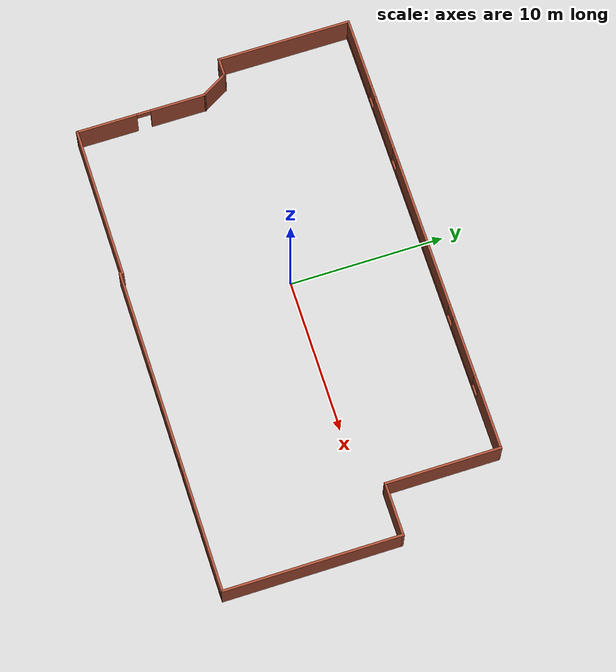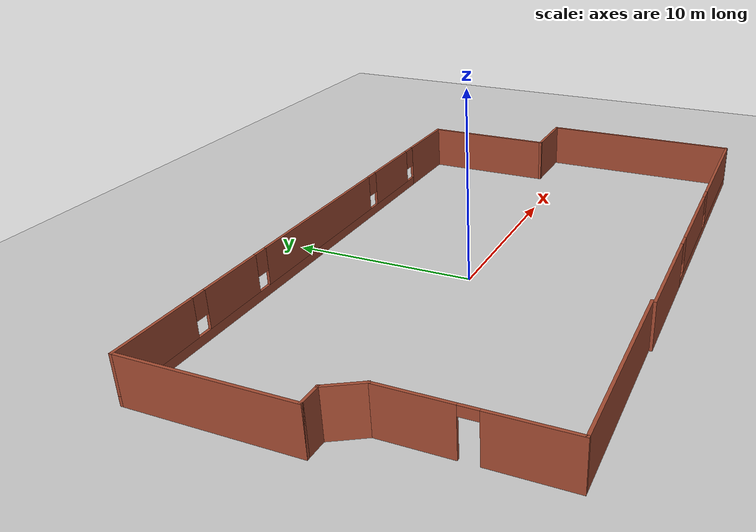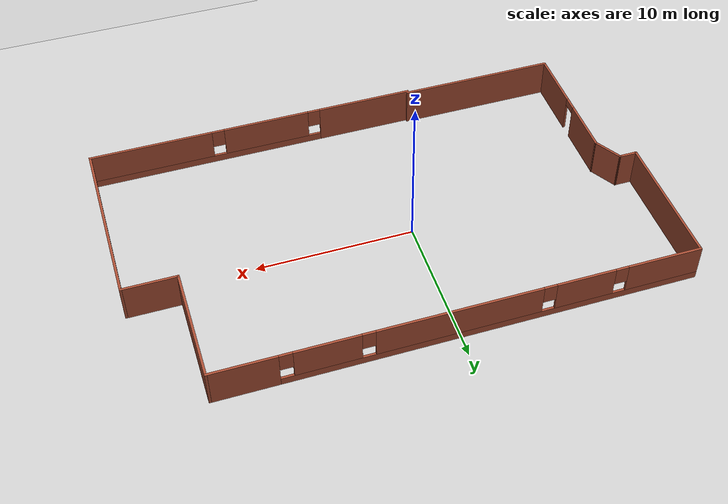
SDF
<sdf version="1.6">
 <world name="default">
  <plugin name="disable_physics" filename="libgazebo_no_physics_plugin.so"/>
  <plugin name="occupancy_grid" filename="libgazebo_occupancy_grid_plugin.so"/>
  <model name="ground_plane">
   <static>1</static>
   <link name="link">
    <collision name="collision">
     <geometry><plane><normal>0 0 1</normal><size>100 100</size></plane></geometry>
     <surface><friction><ode><mu>100</mu><mu2>50</mu2></ode></friction></surface>
    </collision>
    <visual name="visual">
     <cast_shadows>0</cast_shadows>
     <geometry><plane><normal>0 0 1</normal><size>100 100</size></plane></geometry>
     <material>
      <script><uri>file://media/materials/scripts/gazebo.material</uri><name>Gazebo/Grey</name></script>
     </material>
    </visual>
   </link>
  </model>
  <light name="sun" type="directional">
   <cast_shadows>0</cast_shadows>
   <pose>0 0 10 0 -0 0</pose>
   <diffuse>0.95 0.95 0.95 1</diffuse>
   <specular>0.1 0.1 0.1 1</specular>
   <attenuation>
    <range>1000</range>
    <constant>0.9</constant>
    <linear>0.01</linear>
    <quadratic>0.001</quadratic>
   </attenuation>
   <direction>-0.5 0.5 -1</direction>
  </light>
  <gravity>0 0 -9.8</gravity>
  <magnetic_field>6e-06 2.3e-05 -4.2e-05</magnetic_field>
  <atmosphere type="adiabatic"/>
  <physics name="default_physics" default="1" type="ode">
   <max_step_size>0.02</max_step_size>
   <real_time_factor>1</real_time_factor>
   <real_time_update_rate>50</real_time_update_rate>
  </physics>
  <scene><ambient>0.4 0.4 0.4 1</ambient><background>0.7 0.7 0.7 1</background><shadows>1</shadows></scene>
  <spherical_coordinates>
   <surface_model>EARTH_WGS84</surface_model>
   <latitude_deg>0</latitude_deg>
   <longitude_deg>0</longitude_deg>
   <elevation>0</elevation>
   <heading_deg>0</heading_deg>
  </spherical_coordinates>
  <model name="walls">
   <link name="Wall_10">
    <pose>-14.9125 -0.051073 0 0 0 -1.0472</pose>
    <visual name="Wall_10_Visual">
     <pose>0 0 1.25 0 -0 0</pose>
     <geometry><box><size>2 0.15 2.5</size></box></geometry>
     <material>
      <script><uri>file://media/materials/scripts/gazebo.material</uri><name>Gazebo/Bricks</name></script>
      <ambient>1 1 1 1</ambient>
      <diffuse>1 1 1 1</diffuse>
      <specular>0.2 0.2 0.2 1</specular>
      <emissive>0 0 0 1</emissive>
     </material>
    </visual>
    <collision name="Wall_10_Collision">
     <pose>0 0 1.25 0 -0 0</pose>
     <geometry><box><size>2 0.15 2.5</size></box></geometry>
     <surface>
      <friction>
       <ode><mu>1</mu><mu2>1</mu2><fdir1>0 0 0</fdir1><slip1>0</slip1><slip2>0</slip2></ode>
       <torsional>
        <coefficient>1</coefficient>
        <patch_radius>0</patch_radius>
        <surface_radius>0</surface_radius>
        <use_patch_radius>1</use_patch_radius>
        <ode><slip>0</slip></ode>
       </torsional>
      </friction>
      <bounce><restitution_coefficient>0</restitution_coefficient><threshold>1e+06</threshold></bounce>
      <contact>
       <collide_without_contact>0</collide_without_contact>
       <collide_without_contact_bitmask>1</collide_without_contact_bitmask>
       <collide_bitmask>1</collide_bitmask>
       <ode>
        <soft_cfm>0</soft_cfm>
        <soft_erp>0.2</soft_erp>
        <kp>1e+13</kp>
        <kd>1</kd>
        <max_vel>0.01</max_vel>
        <min_depth>0</min_depth>
       </ode>
       <bullet>
        <split_impulse>1</split_impulse>
        <split_impulse_penetration_threshold>-0.01</split_impulse_penetration_threshold>
        <soft_cfm>0</soft_cfm>
        <soft_erp>0.2</soft_erp>
        <kp>1e+13</kp>
        <kd>1</kd>
       </bullet>
      </contact>
     </surface>
    </collision>
   </link>
   <link name="Wall_11">
    <pose>-14.45 -5.02715 0 0 0 -1.5708</pose>
    <visual name="Wall_11_Visual_1">
     <pose>2.26538 0 1.25 0 -0 0</pose>
     <geometry><box><size>3.96925 0.15 2.5</size></box></geometry>
     <material>
      <script><uri>file://media/materials/scripts/gazebo.material</uri><name>Gazebo/Bricks</name></script>
      <ambient>1 1 1 1</ambient>
      <diffuse>1 1 1 1</diffuse>
      <specular>0.2 0.2 0.2 1</specular>
      <emissive>0 0 0 1</emissive>
     </material>
    </visual>
    <visual name="Wall_11_Visual_0">
     <pose>-2.43462 0 1.25 0 -0 0</pose>
     <geometry><box><size>3.63075 0.15 2.5</size></box></geometry>
     <material>
      <script><uri>file://media/materials/scripts/gazebo.material</uri><name>Gazebo/Bricks</name></script>
      <ambient>1 1 1 1</ambient>
      <diffuse>1 1 1 1</diffuse>
      <specular>0.2 0.2 0.2 1</specular>
      <emissive>0 0 0 1</emissive>
     </material>
    </visual>
    <visual name="Wall_11_Visual_2">
     <pose>-0.169246 0 2.25 0 -0 0</pose>
     <geometry><box><size>0.9 0.15 0.5</size></box></geometry>
     <material>
      <script><uri>file://media/materials/scripts/gazebo.material</uri><name>Gazebo/Bricks</name></script>
      <ambient>1 1 1 1</ambient>
      <diffuse>1 1 1 1</diffuse>
      <specular>0.2 0.2 0.2 1</specular>
      <emissive>0 0 0 1</emissive>
     </material>
    </visual>
    <collision name="Wall_11_Collision_0">
     <pose>-2.43462 0 1.25 0 -0 0</pose>
     <geometry><box><size>3.63075 0.15 2.5</size></box></geometry>
     <surface>
      <friction>
       <ode><mu>1</mu><mu2>1</mu2><fdir1>0 0 0</fdir1><slip1>0</slip1><slip2>0</slip2></ode>
       <torsional>
        <coefficient>1</coefficient>
        <patch_radius>0</patch_radius>
        <surface_radius>0</surface_radius>
        <use_patch_radius>1</use_patch_radius>
        <ode><slip>0</slip></ode>
       </torsional>
      </friction>
      <bounce><restitution_coefficient>0</restitution_coefficient><threshold>1e+06</threshold></bounce>
      <contact>
       <collide_without_contact>0</collide_without_contact>
       <collide_without_contact_bitmask>1</collide_without_contact_bitmask>
       <collide_bitmask>1</collide_bitmask>
       <ode>
        <soft_cfm>0</soft_cfm>
        <soft_erp>0.2</soft_erp>
        <kp>1e+13</kp>
        <kd>1</kd>
        <max_vel>0.01</max_vel>
        <min_depth>0</min_depth>
       </ode>
       <bullet>
        <split_impulse>1</split_impulse>
        <split_impulse_penetration_threshold>-0.01</split_impulse_penetration_threshold>
        <soft_cfm>0</soft_cfm>
        <soft_erp>0.2</soft_erp>
        <kp>1e+13</kp>
        <kd>1</kd>
       </bullet>
      </contact>
     </surface>
    </collision>
    <collision name="Wall_11_Collision_2">
     <pose>-0.169246 0 2.25 0 -0 0</pose>
     <geometry><box><size>0.9 0.15 0.5</size></box></geometry>
     <surface>
      <friction>
       <ode><mu>1</mu><mu2>1</mu2><fdir1>0 0 0</fdir1><slip1>0</slip1><slip2>0</slip2></ode>
       <torsional>
        <coefficient>1</coefficient>
        <patch_radius>0</patch_radius>
        <surface_radius>0</surface_radius>
        <use_patch_radius>1</use_patch_radius>
        <ode><slip>0</slip></ode>
       </torsional>
      </friction>
      <bounce><restitution_coefficient>0</restitution_coefficient><threshold>1e+06</threshold></bounce>
      <contact>
       <collide_without_contact>0</collide_without_contact>
       <collide_without_contact_bitmask>1</collide_without_contact_bitmask>
       <collide_bitmask>1</collide_bitmask>
       <ode>
        <soft_cfm>0</soft_cfm>
        <soft_erp>0.2</soft_erp>
        <kp>1e+13</kp>
        <kd>1</kd>
        <max_vel>0.01</max_vel>
        <min_depth>0</min_depth>
       </ode>
       <bullet>
        <split_impulse>1</split_impulse>
        <split_impulse_penetration_threshold>-0.01</split_impulse_penetration_threshold>
        <soft_cfm>0</soft_cfm>
        <soft_erp>0.2</soft_erp>
        <kp>1e+13</kp>
        <kd>1</kd>
       </bullet>
      </contact>
     </surface>
    </collision>
    <collision name="Wall_11_Collision_1">
     <pose>2.26538 0 1.25 0 -0 0</pose>
     <geometry><box><size>3.96925 0.15 2.5</size></box></geometry>
     <surface>
      <friction>
       <ode><mu>1</mu><mu2>1</mu2><fdir1>0 0 0</fdir1><slip1>0</slip1><slip2>0</slip2></ode>
       <torsional>
        <coefficient>1</coefficient>
        <patch_radius>0</patch_radius>
        <surface_radius>0</surface_radius>
        <use_patch_radius>1</use_patch_radius>
        <ode><slip>0</slip></ode>
       </torsional>
      </friction>
      <bounce><restitution_coefficient>0</restitution_coefficient><threshold>1e+06</threshold></bounce>
      <contact>
       <collide_without_contact>0</collide_without_contact>
       <collide_without_contact_bitmask>1</collide_without_contact_bitmask>
       <collide_bitmask>1</collide_bitmask>
       <ode>
        <soft_cfm>0</soft_cfm>
        <soft_erp>0.2</soft_erp>
        <kp>1e+13</kp>
        <kd>1</kd>
        <max_vel>0.01</max_vel>
        <min_depth>0</min_depth>
       </ode>
       <bullet>
        <split_impulse>1</split_impulse>
        <split_impulse_penetration_threshold>-0.01</split_impulse_penetration_threshold>
        <soft_cfm>0</soft_cfm>
        <soft_erp>0.2</soft_erp>
        <kp>1e+13</kp>
        <kd>1</kd>
       </bullet>
      </contact>
     </surface>
    </collision>
   </link>
   <link name="Wall_12">
    <pose>-9.525 -9.20215 0 0 -0 0</pose>
    <visual name="Wall_12_Visual">
     <pose>0 0 1.25 0 -0 0</pose>
     <geometry><box><size>10 0.15 2.5</size></box></geometry>
     <material>
      <script><uri>file://media/materials/scripts/gazebo.material</uri><name>Gazebo/Bricks</name></script>
      <ambient>1 1 1 1</ambient>
      <diffuse>1 1 1 1</diffuse>
      <specular>0.2 0.2 0.2 1</specular>
      <emissive>0 0 0 1</emissive>
     </material>
    </visual>
    <collision name="Wall_12_Collision">
     <pose>0 0 1.25 0 -0 0</pose>
     <geometry><box><size>10 0.15 2.5</size></box></geometry>
     <surface>
      <friction>
       <ode><mu>1</mu><mu2>1</mu2><fdir1>0 0 0</fdir1><slip1>0</slip1><slip2>0</slip2></ode>
       <torsional>
        <coefficient>1</coefficient>
        <patch_radius>0</patch_radius>
        <surface_radius>0</surface_radius>
        <use_patch_radius>1</use_patch_radius>
        <ode><slip>0</slip></ode>
       </torsional>
      </friction>
      <bounce><restitution_coefficient>0</restitution_coefficient><threshold>1e+06</threshold></bounce>
      <contact>
       <collide_without_contact>0</collide_without_contact>
       <collide_without_contact_bitmask>1</collide_without_contact_bitmask>
       <collide_bitmask>1</collide_bitmask>
       <ode>
        <soft_cfm>0</soft_cfm>
        <soft_erp>0.2</soft_erp>
        <kp>1e+13</kp>
        <kd>1</kd>
        <max_vel>0.01</max_vel>
        <min_depth>0</min_depth>
       </ode>
       <bullet>
        <split_impulse>1</split_impulse>
        <split_impulse_penetration_threshold>-0.01</split_impulse_penetration_threshold>
        <soft_cfm>0</soft_cfm>
        <soft_erp>0.2</soft_erp>
        <kp>1e+13</kp>
        <kd>1</kd>
       </bullet>
      </contact>
     </surface>
    </collision>
   </link>
   <link name="Wall_3">
    <pose>5.925 -9.35 0 0 -0 0</pose>
    <visual name="Wall_3_Visual_0">
     <pose>-7.53882 0 1.25 0 -0 0</pose>
     <geometry><box><size>6.17237 0.15 2.5</size></box></geometry>
     <material>
      <script><uri>file://media/materials/scripts/gazebo.material</uri><name>Gazebo/Bricks</name></script>
      <ambient>1 1 1 1</ambient>
      <diffuse>1 1 1 1</diffuse>
      <specular>0.2 0.2 0.2 1</specular>
      <emissive>0 0 0 1</emissive>
     </material>
    </visual>
    <visual name="Wall_3_Visual_1">
     <pose>3.08618 0 0.25 0 -0 0</pose>
     <geometry><box><size>15.0776 0.15 0.5</size></box></geometry>
     <material>
      <script><uri>file://media/materials/scripts/gazebo.material</uri><name>Gazebo/Bricks</name></script>
      <ambient>1 1 1 1</ambient>
      <diffuse>1 1 1 1</diffuse>
      <specular>0.2 0.2 0.2 1</specular>
      <emissive>0 0 0 1</emissive>
     </material>
    </visual>
    <visual name="Wall_3_Visual_2">
     <pose>-0.856641 0 1.5 0 -0 0</pose>
     <geometry><box><size>5.59198 0.15 2</size></box></geometry>
     <material>
      <script><uri>file://media/materials/scripts/gazebo.material</uri><name>Gazebo/Bricks</name></script>
      <ambient>1 1 1 1</ambient>
      <diffuse>1 1 1 1</diffuse>
      <specular>0.2 0.2 0.2 1</specular>
      <emissive>0 0 0 1</emissive>
     </material>
    </visual>
    <visual name="Wall_3_Visual_3">
     <pose>6.68217 0 1.5 0 -0 0</pose>
     <geometry><box><size>7.88565 0.15 2</size></box></geometry>
     <material>
      <script><uri>file://media/materials/scripts/gazebo.material</uri><name>Gazebo/Bricks</name></script>
      <ambient>1 1 1 1</ambient>
      <diffuse>1 1 1 1</diffuse>
      <specular>0.2 0.2 0.2 1</specular>
      <emissive>0 0 0 1</emissive>
     </material>
    </visual>
    <visual name="Wall_3_Visual_4">
     <pose>-4.05263 0 1.9 0 -0 0</pose>
     <geometry><box><size>0.8 0.15 1.2</size></box></geometry>
     <material>
      <script><uri>file://media/materials/scripts/gazebo.material</uri><name>Gazebo/Bricks</name></script>
      <ambient>1 1 1 1</ambient>
      <diffuse>1 1 1 1</diffuse>
      <specular>0.2 0.2 0.2 1</specular>
      <emissive>0 0 0 1</emissive>
     </material>
    </visual>
    <visual name="Wall_3_Visual_5">
     <pose>2.33935 0 1.9 0 -0 0</pose>
     <geometry><box><size>0.8 0.15 1.2</size></box></geometry>
     <material>
      <script><uri>file://media/materials/scripts/gazebo.material</uri><name>Gazebo/Bricks</name></script>
      <ambient>1 1 1 1</ambient>
      <diffuse>1 1 1 1</diffuse>
      <specular>0.2 0.2 0.2 1</specular>
      <emissive>0 0 0 1</emissive>
     </material>
    </visual>
    <collision name="Wall_3_Collision_0">
     <pose>-7.53882 0 1.25 0 -0 0</pose>
     <geometry><box><size>6.17237 0.15 2.5</size></box></geometry>
     <surface>
      <friction>
       <ode><mu>1</mu><mu2>1</mu2><fdir1>0 0 0</fdir1><slip1>0</slip1><slip2>0</slip2></ode>
       <torsional>
        <coefficient>1</coefficient>
        <patch_radius>0</patch_radius>
        <surface_radius>0</surface_radius>
        <use_patch_radius>1</use_patch_radius>
        <ode><slip>0</slip></ode>
       </torsional>
      </friction>
      <bounce><restitution_coefficient>0</restitution_coefficient><threshold>1e+06</threshold></bounce>
      <contact>
       <collide_without_contact>0</collide_without_contact>
       <collide_without_contact_bitmask>1</collide_without_contact_bitmask>
       <collide_bitmask>1</collide_bitmask>
       <ode>
        <soft_cfm>0</soft_cfm>
        <soft_erp>0.2</soft_erp>
        <kp>1e+13</kp>
        <kd>1</kd>
        <max_vel>0.01</max_vel>
        <min_depth>0</min_depth>
       </ode>
       <bullet>
        <split_impulse>1</split_impulse>
        <split_impulse_penetration_threshold>-0.01</split_impulse_penetration_threshold>
        <soft_cfm>0</soft_cfm>
        <soft_erp>0.2</soft_erp>
        <kp>1e+13</kp>
        <kd>1</kd>
       </bullet>
      </contact>
     </surface>
    </collision>
    <collision name="Wall_3_Collision_1">
     <pose>3.08618 0 0.25 0 -0 0</pose>
     <geometry><box><size>15.0776 0.15 0.5</size></box></geometry>
     <surface>
      <friction>
       <ode><mu>1</mu><mu2>1</mu2><fdir1>0 0 0</fdir1><slip1>0</slip1><slip2>0</slip2></ode>
       <torsional>
        <coefficient>1</coefficient>
        <patch_radius>0</patch_radius>
        <surface_radius>0</surface_radius>
        <use_patch_radius>1</use_patch_radius>
        <ode><slip>0</slip></ode>
       </torsional>
      </friction>
      <bounce><restitution_coefficient>0</restitution_coefficient><threshold>1e+06</threshold></bounce>
      <contact>
       <collide_without_contact>0</collide_without_contact>
       <collide_without_contact_bitmask>1</collide_without_contact_bitmask>
       <collide_bitmask>1</collide_bitmask>
       <ode>
        <soft_cfm>0</soft_cfm>
        <soft_erp>0.2</soft_erp>
        <kp>1e+13</kp>
        <kd>1</kd>
        <max_vel>0.01</max_vel>
        <min_depth>0</min_depth>
       </ode>
       <bullet>
        <split_impulse>1</split_impulse>
        <split_impulse_penetration_threshold>-0.01</split_impulse_penetration_threshold>
        <soft_cfm>0</soft_cfm>
        <soft_erp>0.2</soft_erp>
        <kp>1e+13</kp>
        <kd>1</kd>
       </bullet>
      </contact>
     </surface>
    </collision>
    <collision name="Wall_3_Collision_4">
     <pose>-4.05263 0 1.9 0 -0 0</pose>
     <geometry><box><size>0.8 0.15 1.2</size></box></geometry>
     <surface>
      <friction>
       <ode><mu>1</mu><mu2>1</mu2><fdir1>0 0 0</fdir1><slip1>0</slip1><slip2>0</slip2></ode>
       <torsional>
        <coefficient>1</coefficient>
        <patch_radius>0</patch_radius>
        <surface_radius>0</surface_radius>
        <use_patch_radius>1</use_patch_radius>
        <ode><slip>0</slip></ode>
       </torsional>
      </friction>
      <bounce><restitution_coefficient>0</restitution_coefficient><threshold>1e+06</threshold></bounce>
      <contact>
       <collide_without_contact>0</collide_without_contact>
       <collide_without_contact_bitmask>1</collide_without_contact_bitmask>
       <collide_bitmask>1</collide_bitmask>
       <ode>
        <soft_cfm>0</soft_cfm>
        <soft_erp>0.2</soft_erp>
        <kp>1e+13</kp>
        <kd>1</kd>
        <max_vel>0.01</max_vel>
        <min_depth>0</min_depth>
       </ode>
       <bullet>
        <split_impulse>1</split_impulse>
        <split_impulse_penetration_threshold>-0.01</split_impulse_penetration_threshold>
        <soft_cfm>0</soft_cfm>
        <soft_erp>0.2</soft_erp>
        <kp>1e+13</kp>
        <kd>1</kd>
       </bullet>
      </contact>
     </surface>
    </collision>
    <collision name="Wall_3_Collision_2">
     <pose>-0.856641 0 1.5 0 -0 0</pose>
     <geometry><box><size>5.59198 0.15 2</size></box></geometry>
     <surface>
      <friction>
       <ode><mu>1</mu><mu2>1</mu2><fdir1>0 0 0</fdir1><slip1>0</slip1><slip2>0</slip2></ode>
       <torsional>
        <coefficient>1</coefficient>
        <patch_radius>0</patch_radius>
        <surface_radius>0</surface_radius>
        <use_patch_radius>1</use_patch_radius>
        <ode><slip>0</slip></ode>
       </torsional>
      </friction>
      <bounce><restitution_coefficient>0</restitution_coefficient><threshold>1e+06</threshold></bounce>
      <contact>
       <collide_without_contact>0</collide_without_contact>
       <collide_without_contact_bitmask>1</collide_without_contact_bitmask>
       <collide_bitmask>1</collide_bitmask>
       <ode>
        <soft_cfm>0</soft_cfm>
        <soft_erp>0.2</soft_erp>
        <kp>1e+13</kp>
        <kd>1</kd>
        <max_vel>0.01</max_vel>
        <min_depth>0</min_depth>
       </ode>
       <bullet>
        <split_impulse>1</split_impulse>
        <split_impulse_penetration_threshold>-0.01</split_impulse_penetration_threshold>
        <soft_cfm>0</soft_cfm>
        <soft_erp>0.2</soft_erp>
        <kp>1e+13</kp>
        <kd>1</kd>
       </bullet>
      </contact>
     </surface>
    </collision>
    <collision name="Wall_3_Collision_3">
     <pose>6.68217 0 1.5 0 -0 0</pose>
     <geometry><box><size>7.88565 0.15 2</size></box></geometry>
     <surface>
      <friction>
       <ode><mu>1</mu><mu2>1</mu2><fdir1>0 0 0</fdir1><slip1>0</slip1><slip2>0</slip2></ode>
       <torsional>
        <coefficient>1</coefficient>
        <patch_radius>0</patch_radius>
        <surface_radius>0</surface_radius>
        <use_patch_radius>1</use_patch_radius>
        <ode><slip>0</slip></ode>
       </torsional>
      </friction>
      <bounce><restitution_coefficient>0</restitution_coefficient><threshold>1e+06</threshold></bounce>
      <contact>
       <collide_without_contact>0</collide_without_contact>
       <collide_without_contact_bitmask>1</collide_without_contact_bitmask>
       <collide_bitmask>1</collide_bitmask>
       <ode>
        <soft_cfm>0</soft_cfm>
        <soft_erp>0.2</soft_erp>
        <kp>1e+13</kp>
        <kd>1</kd>
        <max_vel>0.01</max_vel>
        <min_depth>0</min_depth>
       </ode>
       <bullet>
        <split_impulse>1</split_impulse>
        <split_impulse_penetration_threshold>-0.01</split_impulse_penetration_threshold>
        <soft_cfm>0</soft_cfm>
        <soft_erp>0.2</soft_erp>
        <kp>1e+13</kp>
        <kd>1</kd>
       </bullet>
      </contact>
     </surface>
    </collision>
    <collision name="Wall_3_Collision_5">
     <pose>2.33935 0 1.9 0 -0 0</pose>
     <geometry><box><size>0.8 0.15 1.2</size></box></geometry>
     <surface>
      <friction>
       <ode><mu>1</mu><mu2>1</mu2><fdir1>0 0 0</fdir1><slip1>0</slip1><slip2>0</slip2></ode>
       <torsional>
        <coefficient>1</coefficient>
        <patch_radius>0</patch_radius>
        <surface_radius>0</surface_radius>
        <use_patch_radius>1</use_patch_radius>
        <ode><slip>0</slip></ode>
       </torsional>
      </friction>
      <bounce><restitution_coefficient>0</restitution_coefficient><threshold>1e+06</threshold></bounce>
      <contact>
       <collide_without_contact>0</collide_without_contact>
       <collide_without_contact_bitmask>1</collide_without_contact_bitmask>
       <collide_bitmask>1</collide_bitmask>
       <ode>
        <soft_cfm>0</soft_cfm>
        <soft_erp>0.2</soft_erp>
        <kp>1e+13</kp>
        <kd>1</kd>
        <max_vel>0.01</max_vel>
        <min_depth>0</min_depth>
       </ode>
       <bullet>
        <split_impulse>1</split_impulse>
        <split_impulse_penetration_threshold>-0.01</split_impulse_penetration_threshold>
        <soft_cfm>0</soft_cfm>
        <soft_erp>0.2</soft_erp>
        <kp>1e+13</kp>
        <kd>1</kd>
       </bullet>
      </contact>
     </surface>
    </collision>
   </link>
   <link name="Wall_4">
    <pose>16.475 -3.675 0 0 -0 1.5708</pose>
    <visual name="Wall_4_Visual">
     <pose>0 0 1.25 0 -0 0</pose>
     <geometry><box><size>11.5 0.15 2.5</size></box></geometry>
     <material>
      <script><uri>file://media/materials/scripts/gazebo.material</uri><name>Gazebo/Bricks</name></script>
      <ambient>1 1 1 1</ambient>
      <diffuse>1 1 1 1</diffuse>
      <specular>0.2 0.2 0.2 1</specular>
      <emissive>0 0 0 1</emissive>
     </material>
    </visual>
    <collision name="Wall_4_Collision">
     <pose>0 0 1.25 0 -0 0</pose>
     <geometry><box><size>11.5 0.15 2.5</size></box></geometry>
     <surface>
      <friction>
       <ode><mu>1</mu><mu2>1</mu2><fdir1>0 0 0</fdir1><slip1>0</slip1><slip2>0</slip2></ode>
       <torsional>
        <coefficient>1</coefficient>
        <patch_radius>0</patch_radius>
        <surface_radius>0</surface_radius>
        <use_patch_radius>1</use_patch_radius>
        <ode><slip>0</slip></ode>
       </torsional>
      </friction>
      <bounce><restitution_coefficient>0</restitution_coefficient><threshold>1e+06</threshold></bounce>
      <contact>
       <collide_without_contact>0</collide_without_contact>
       <collide_without_contact_bitmask>1</collide_without_contact_bitmask>
       <collide_bitmask>1</collide_bitmask>
       <ode>
        <soft_cfm>0</soft_cfm>
        <soft_erp>0.2</soft_erp>
        <kp>1e+13</kp>
        <kd>1</kd>
        <max_vel>0.01</max_vel>
        <min_depth>0</min_depth>
       </ode>
       <bullet>
        <split_impulse>1</split_impulse>
        <split_impulse_penetration_threshold>-0.01</split_impulse_penetration_threshold>
        <soft_cfm>0</soft_cfm>
        <soft_erp>0.2</soft_erp>
        <kp>1e+13</kp>
        <kd>1</kd>
       </bullet>
      </contact>
     </surface>
    </collision>
   </link>
   <link name="Wall_5">
    <pose>14.8 2 0 0 -0 3.14159</pose>
    <visual name="Wall_5_Visual">
     <pose>0 0 1.25 0 -0 0</pose>
     <geometry><box><size>3.5 0.15 2.5</size></box></geometry>
     <material>
      <script><uri>file://media/materials/scripts/gazebo.material</uri><name>Gazebo/Bricks</name></script>
      <ambient>1 1 1 1</ambient>
      <diffuse>1 1 1 1</diffuse>
      <specular>0.2 0.2 0.2 1</specular>
      <emissive>0 0 0 1</emissive>
     </material>
    </visual>
    <collision name="Wall_5_Collision">
     <pose>0 0 1.25 0 -0 0</pose>
     <geometry><box><size>3.5 0.15 2.5</size></box></geometry>
     <surface>
      <friction>
       <ode><mu>1</mu><mu2>1</mu2><fdir1>0 0 0</fdir1><slip1>0</slip1><slip2>0</slip2></ode>
       <torsional>
        <coefficient>1</coefficient>
        <patch_radius>0</patch_radius>
        <surface_radius>0</surface_radius>
        <use_patch_radius>1</use_patch_radius>
        <ode><slip>0</slip></ode>
       </torsional>
      </friction>
      <bounce><restitution_coefficient>0</restitution_coefficient><threshold>1e+06</threshold></bounce>
      <contact>
       <collide_without_contact>0</collide_without_contact>
       <collide_without_contact_bitmask>1</collide_without_contact_bitmask>
       <collide_bitmask>1</collide_bitmask>
       <ode>
        <soft_cfm>0</soft_cfm>
        <soft_erp>0.2</soft_erp>
        <kp>1e+13</kp>
        <kd>1</kd>
        <max_vel>0.01</max_vel>
        <min_depth>0</min_depth>
       </ode>
       <bullet>
        <split_impulse>1</split_impulse>
        <split_impulse_penetration_threshold>-0.01</split_impulse_penetration_threshold>
        <soft_cfm>0</soft_cfm>
        <soft_erp>0.2</soft_erp>
        <kp>1e+13</kp>
        <kd>1</kd>
       </bullet>
      </contact>
     </surface>
    </collision>
   </link>
   <link name="Wall_6">
    <pose>13.125 5.675 0 0 -0 1.5708</pose>
    <visual name="Wall_6_Visual">
     <pose>0 0 1.25 0 -0 0</pose>
     <geometry><box><size>7.5 0.15 2.5</size></box></geometry>
     <material>
      <script><uri>file://media/materials/scripts/gazebo.material</uri><name>Gazebo/Bricks</name></script>
      <ambient>1 1 1 1</ambient>
      <diffuse>1 1 1 1</diffuse>
      <specular>0.2 0.2 0.2 1</specular>
      <emissive>0 0 0 1</emissive>
     </material>
    </visual>
    <collision name="Wall_6_Collision">
     <pose>0 0 1.25 0 -0 0</pose>
     <geometry><box><size>7.5 0.15 2.5</size></box></geometry>
     <surface>
      <friction>
       <ode><mu>1</mu><mu2>1</mu2><fdir1>0 0 0</fdir1><slip1>0</slip1><slip2>0</slip2></ode>
       <torsional>
        <coefficient>1</coefficient>
        <patch_radius>0</patch_radius>
        <surface_radius>0</surface_radius>
        <use_patch_radius>1</use_patch_radius>
        <ode><slip>0</slip></ode>
       </torsional>
      </friction>
      <bounce><restitution_coefficient>0</restitution_coefficient><threshold>1e+06</threshold></bounce>
      <contact>
       <collide_without_contact>0</collide_without_contact>
       <collide_without_contact_bitmask>1</collide_without_contact_bitmask>
       <collide_bitmask>1</collide_bitmask>
       <ode>
        <soft_cfm>0</soft_cfm>
        <soft_erp>0.2</soft_erp>
        <kp>1e+13</kp>
        <kd>1</kd>
        <max_vel>0.01</max_vel>
        <min_depth>0</min_depth>
       </ode>
       <bullet>
        <split_impulse>1</split_impulse>
        <split_impulse_penetration_threshold>-0.01</split_impulse_penetration_threshold>
        <soft_cfm>0</soft_cfm>
        <soft_erp>0.2</soft_erp>
        <kp>1e+13</kp>
        <kd>1</kd>
       </bullet>
      </contact>
     </surface>
    </collision>
   </link>
   <link name="Wall_7">
    <pose>-1.675 9.35 0 0 -0 3.14159</pose>
    <visual name="Wall_7_Visual_0">
     <pose>-12.8229 0 1.25 0 -0 0</pose>
     <geometry><box><size>4.10417 0.15 2.5</size></box></geometry>
     <material>
      <script><uri>file://media/materials/scripts/gazebo.material</uri><name>Gazebo/Bricks</name></script>
      <ambient>1 1 1 1</ambient>
      <diffuse>1 1 1 1</diffuse>
      <specular>0.2 0.2 0.2 1</specular>
      <emissive>0 0 0 1</emissive>
     </material>
    </visual>
    <visual name="Wall_7_Visual_1">
     <pose>2.05209 0 0.25 0 -0 0</pose>
     <geometry><box><size>25.6458 0.15 0.5</size></box></geometry>
     <material>
      <script><uri>file://media/materials/scripts/gazebo.material</uri><name>Gazebo/Bricks</name></script>
      <ambient>1 1 1 1</ambient>
      <diffuse>1 1 1 1</diffuse>
      <specular>0.2 0.2 0.2 1</specular>
      <emissive>0 0 0 1</emissive>
     </material>
    </visual>
    <visual name="Wall_7_Visual_2">
     <pose>-7.99071 0 1.5 0 -0 0</pose>
     <geometry><box><size>3.96022 0.15 2</size></box></geometry>
     <material>
      <script><uri>file://media/materials/scripts/gazebo.material</uri><name>Gazebo/Bricks</name></script>
      <ambient>1 1 1 1</ambient>
      <diffuse>1 1 1 1</diffuse>
      <specular>0.2 0.2 0.2 1</specular>
      <emissive>0 0 0 1</emissive>
     </material>
    </visual>
    <visual name="Wall_7_Visual_3">
     <pose>-0.169328 0 1.5 0 -0 0</pose>
     <geometry><box><size>10.0825 0.15 2</size></box></geometry>
     <material>
      <script><uri>file://media/materials/scripts/gazebo.material</uri><name>Gazebo/Bricks</name></script>
      <ambient>1 1 1 1</ambient>
      <diffuse>1 1 1 1</diffuse>
      <specular>0.2 0.2 0.2 1</specular>
      <emissive>0 0 0 1</emissive>
     </material>
    </visual>
    <visual name="Wall_7_Visual_4">
     <pose>7.51723 0 1.5 0 -0 0</pose>
     <geometry><box><size>3.69057 0.15 2</size></box></geometry>
     <material>
      <script><uri>file://media/materials/scripts/gazebo.material</uri><name>Gazebo/Bricks</name></script>
      <ambient>1 1 1 1</ambient>
      <diffuse>1 1 1 1</diffuse>
      <specular>0.2 0.2 0.2 1</specular>
      <emissive>0 0 0 1</emissive>
     </material>
    </visual>
    <visual name="Wall_7_Visual_5">
     <pose>12.5188 0 1.5 0 -0 0</pose>
     <geometry><box><size>4.71248 0.15 2</size></box></geometry>
     <material>
      <script><uri>file://media/materials/scripts/gazebo.material</uri><name>Gazebo/Bricks</name></script>
      <ambient>1 1 1 1</ambient>
      <diffuse>1 1 1 1</diffuse>
      <specular>0.2 0.2 0.2 1</specular>
      <emissive>0 0 0 1</emissive>
     </material>
    </visual>
    <visual name="Wall_7_Visual_6">
     <pose>-10.3708 0 1.9 0 -0 0</pose>
     <geometry><box><size>0.8 0.15 1.2</size></box></geometry>
     <material>
      <script><uri>file://media/materials/scripts/gazebo.material</uri><name>Gazebo/Bricks</name></script>
      <ambient>1 1 1 1</ambient>
      <diffuse>1 1 1 1</diffuse>
      <specular>0.2 0.2 0.2 1</specular>
      <emissive>0 0 0 1</emissive>
     </material>
    </visual>
    <visual name="Wall_7_Visual_7">
     <pose>-5.6106 0 1.9 0 -0 0</pose>
     <geometry><box><size>0.8 0.15 1.2</size></box></geometry>
     <material>
      <script><uri>file://media/materials/scripts/gazebo.material</uri><name>Gazebo/Bricks</name></script>
      <ambient>1 1 1 1</ambient>
      <diffuse>1 1 1 1</diffuse>
      <specular>0.2 0.2 0.2 1</specular>
      <emissive>0 0 0 1</emissive>
     </material>
    </visual>
    <visual name="Wall_7_Visual_8">
     <pose>5.27195 0 1.9 0 -0 0</pose>
     <geometry><box><size>0.8 0.15 1.2</size></box></geometry>
     <material>
      <script><uri>file://media/materials/scripts/gazebo.material</uri><name>Gazebo/Bricks</name></script>
      <ambient>1 1 1 1</ambient>
      <diffuse>1 1 1 1</diffuse>
      <specular>0.2 0.2 0.2 1</specular>
      <emissive>0 0 0 1</emissive>
     </material>
    </visual>
    <visual name="Wall_7_Visual_9">
     <pose>9.76252 0 1.9 0 -0 0</pose>
     <geometry><box><size>0.8 0.15 1.2</size></box></geometry>
     <material>
      <script><uri>file://media/materials/scripts/gazebo.material</uri><name>Gazebo/Bricks</name></script>
      <ambient>1 1 1 1</ambient>
      <diffuse>1 1 1 1</diffuse>
      <specular>0.2 0.2 0.2 1</specular>
      <emissive>0 0 0 1</emissive>
     </material>
    </visual>
    <collision name="Wall_7_Collision_0">
     <pose>-12.8229 0 1.25 0 -0 0</pose>
     <geometry><box><size>4.10417 0.15 2.5</size></box></geometry>
     <surface>
      <friction>
       <ode><mu>1</mu><mu2>1</mu2><fdir1>0 0 0</fdir1><slip1>0</slip1><slip2>0</slip2></ode>
       <torsional>
        <coefficient>1</coefficient>
        <patch_radius>0</patch_radius>
        <surface_radius>0</surface_radius>
        <use_patch_radius>1</use_patch_radius>
        <ode><slip>0</slip></ode>
       </torsional>
      </friction>
      <bounce><restitution_coefficient>0</restitution_coefficient><threshold>1e+06</threshold></bounce>
      <contact>
       <collide_without_contact>0</collide_without_contact>
       <collide_without_contact_bitmask>1</collide_without_contact_bitmask>
       <collide_bitmask>1</collide_bitmask>
       <ode>
        <soft_cfm>0</soft_cfm>
        <soft_erp>0.2</soft_erp>
        <kp>1e+13</kp>
        <kd>1</kd>
        <max_vel>0.01</max_vel>
        <min_depth>0</min_depth>
       </ode>
       <bullet>
        <split_impulse>1</split_impulse>
        <split_impulse_penetration_threshold>-0.01</split_impulse_penetration_threshold>
        <soft_cfm>0</soft_cfm>
        <soft_erp>0.2</soft_erp>
        <kp>1e+13</kp>
        <kd>1</kd>
       </bullet>
      </contact>
     </surface>
    </collision>
    <collision name="Wall_7_Collision_1">
     <pose>2.05209 0 0.25 0 -0 0</pose>
     <geometry><box><size>25.6458 0.15 0.5</size></box></geometry>
     <surface>
      <friction>
       <ode><mu>1</mu><mu2>1</mu2><fdir1>0 0 0</fdir1><slip1>0</slip1><slip2>0</slip2></ode>
       <torsional>
        <coefficient>1</coefficient>
        <patch_radius>0</patch_radius>
        <surface_radius>0</surface_radius>
        <use_patch_radius>1</use_patch_radius>
        <ode><slip>0</slip></ode>
       </torsional>
      </friction>
      <bounce><restitution_coefficient>0</restitution_coefficient><threshold>1e+06</threshold></bounce>
      <contact>
       <collide_without_contact>0</collide_without_contact>
       <collide_without_contact_bitmask>1</collide_without_contact_bitmask>
       <collide_bitmask>1</collide_bitmask>
       <ode>
        <soft_cfm>0</soft_cfm>
        <soft_erp>0.2</soft_erp>
        <kp>1e+13</kp>
        <kd>1</kd>
        <max_vel>0.01</max_vel>
        <min_depth>0</min_depth>
       </ode>
       <bullet>
        <split_impulse>1</split_impulse>
        <split_impulse_penetration_threshold>-0.01</split_impulse_penetration_threshold>
        <soft_cfm>0</soft_cfm>
        <soft_erp>0.2</soft_erp>
        <kp>1e+13</kp>
        <kd>1</kd>
       </bullet>
      </contact>
     </surface>
    </collision>
    <collision name="Wall_7_Collision_2">
     <pose>-7.99071 0 1.5 0 -0 0</pose>
     <geometry><box><size>3.96022 0.15 2</size></box></geometry>
     <surface>
      <friction>
       <ode><mu>1</mu><mu2>1</mu2><fdir1>0 0 0</fdir1><slip1>0</slip1><slip2>0</slip2></ode>
       <torsional>
        <coefficient>1</coefficient>
        <patch_radius>0</patch_radius>
        <surface_radius>0</surface_radius>
        <use_patch_radius>1</use_patch_radius>
        <ode><slip>0</slip></ode>
       </torsional>
      </friction>
      <bounce><restitution_coefficient>0</restitution_coefficient><threshold>1e+06</threshold></bounce>
      <contact>
       <collide_without_contact>0</collide_without_contact>
       <collide_without_contact_bitmask>1</collide_without_contact_bitmask>
       <collide_bitmask>1</collide_bitmask>
       <ode>
        <soft_cfm>0</soft_cfm>
        <soft_erp>0.2</soft_erp>
        <kp>1e+13</kp>
        <kd>1</kd>
        <max_vel>0.01</max_vel>
        <min_depth>0</min_depth>
       </ode>
       <bullet>
        <split_impulse>1</split_impulse>
        <split_impulse_penetration_threshold>-0.01</split_impulse_penetration_threshold>
        <soft_cfm>0</soft_cfm>
        <soft_erp>0.2</soft_erp>
        <kp>1e+13</kp>
        <kd>1</kd>
       </bullet>
      </contact>
     </surface>
    </collision>
    <collision name="Wall_7_Collision_3">
     <pose>-0.169328 0 1.5 0 -0 0</pose>
     <geometry><box><size>10.0825 0.15 2</size></box></geometry>
     <surface>
      <friction>
       <ode><mu>1</mu><mu2>1</mu2><fdir1>0 0 0</fdir1><slip1>0</slip1><slip2>0</slip2></ode>
       <torsional>
        <coefficient>1</coefficient>
        <patch_radius>0</patch_radius>
        <surface_radius>0</surface_radius>
        <use_patch_radius>1</use_patch_radius>
        <ode><slip>0</slip></ode>
       </torsional>
      </friction>
      <bounce><restitution_coefficient>0</restitution_coefficient><threshold>1e+06</threshold></bounce>
      <contact>
       <collide_without_contact>0</collide_without_contact>
       <collide_without_contact_bitmask>1</collide_without_contact_bitmask>
       <collide_bitmask>1</collide_bitmask>
       <ode>
        <soft_cfm>0</soft_cfm>
        <soft_erp>0.2</soft_erp>
        <kp>1e+13</kp>
        <kd>1</kd>
        <max_vel>0.01</max_vel>
        <min_depth>0</min_depth>
       </ode>
       <bullet>
        <split_impulse>1</split_impulse>
        <split_impulse_penetration_threshold>-0.01</split_impulse_penetration_threshold>
        <soft_cfm>0</soft_cfm>
        <soft_erp>0.2</soft_erp>
        <kp>1e+13</kp>
        <kd>1</kd>
       </bullet>
      </contact>
     </surface>
    </collision>
    <collision name="Wall_7_Collision_4">
     <pose>7.51723 0 1.5 0 -0 0</pose>
     <geometry><box><size>3.69057 0.15 2</size></box></geometry>
     <surface>
      <friction>
       <ode><mu>1</mu><mu2>1</mu2><fdir1>0 0 0</fdir1><slip1>0</slip1><slip2>0</slip2></ode>
       <torsional>
        <coefficient>1</coefficient>
        <patch_radius>0</patch_radius>
        <surface_radius>0</surface_radius>
        <use_patch_radius>1</use_patch_radius>
        <ode><slip>0</slip></ode>
       </torsional>
      </friction>
      <bounce><restitution_coefficient>0</restitution_coefficient><threshold>1e+06</threshold></bounce>
      <contact>
       <collide_without_contact>0</collide_without_contact>
       <collide_without_contact_bitmask>1</collide_without_contact_bitmask>
       <collide_bitmask>1</collide_bitmask>
       <ode>
        <soft_cfm>0</soft_cfm>
        <soft_erp>0.2</soft_erp>
        <kp>1e+13</kp>
        <kd>1</kd>
        <max_vel>0.01</max_vel>
        <min_depth>0</min_depth>
       </ode>
       <bullet>
        <split_impulse>1</split_impulse>
        <split_impulse_penetration_threshold>-0.01</split_impulse_penetration_threshold>
        <soft_cfm>0</soft_cfm>
        <soft_erp>0.2</soft_erp>
        <kp>1e+13</kp>
        <kd>1</kd>
       </bullet>
      </contact>
     </surface>
    </collision>
    <collision name="Wall_7_Collision_6">
     <pose>-10.3708 0 1.9 0 -0 0</pose>
     <geometry><box><size>0.8 0.15 1.2</size></box></geometry>
     <surface>
      <friction>
       <ode><mu>1</mu><mu2>1</mu2><fdir1>0 0 0</fdir1><slip1>0</slip1><slip2>0</slip2></ode>
       <torsional>
        <coefficient>1</coefficient>
        <patch_radius>0</patch_radius>
        <surface_radius>0</surface_radius>
        <use_patch_radius>1</use_patch_radius>
        <ode><slip>0</slip></ode>
       </torsional>
      </friction>
      <bounce><restitution_coefficient>0</restitution_coefficient><threshold>1e+06</threshold></bounce>
      <contact>
       <collide_without_contact>0</collide_without_contact>
       <collide_without_contact_bitmask>1</collide_without_contact_bitmask>
       <collide_bitmask>1</collide_bitmask>
       <ode>
        <soft_cfm>0</soft_cfm>
        <soft_erp>0.2</soft_erp>
        <kp>1e+13</kp>
        <kd>1</kd>
        <max_vel>0.01</max_vel>
        <min_depth>0</min_depth>
       </ode>
       <bullet>
        <split_impulse>1</split_impulse>
        <split_impulse_penetration_threshold>-0.01</split_impulse_penetration_threshold>
        <soft_cfm>0</soft_cfm>
        <soft_erp>0.2</soft_erp>
        <kp>1e+13</kp>
        <kd>1</kd>
       </bullet>
      </contact>
     </surface>
    </collision>
    <collision name="Wall_7_Collision_5">
     <pose>12.5188 0 1.5 0 -0 0</pose>
     <geometry><box><size>4.71248 0.15 2</size></box></geometry>
     <surface>
      <friction>
       <ode><mu>1</mu><mu2>1</mu2><fdir1>0 0 0</fdir1><slip1>0</slip1><slip2>0</slip2></ode>
       <torsional>
        <coefficient>1</coefficient>
        <patch_radius>0</patch_radius>
        <surface_radius>0</surface_radius>
        <use_patch_radius>1</use_patch_radius>
        <ode><slip>0</slip></ode>
       </torsional>
      </friction>
      <bounce><restitution_coefficient>0</restitution_coefficient><threshold>1e+06</threshold></bounce>
      <contact>
       <collide_without_contact>0</collide_without_contact>
       <collide_without_contact_bitmask>1</collide_without_contact_bitmask>
       <collide_bitmask>1</collide_bitmask>
       <ode>
        <soft_cfm>0</soft_cfm>
        <soft_erp>0.2</soft_erp>
        <kp>1e+13</kp>
        <kd>1</kd>
        <max_vel>0.01</max_vel>
        <min_depth>0</min_depth>
       </ode>
       <bullet>
        <split_impulse>1</split_impulse>
        <split_impulse_penetration_threshold>-0.01</split_impulse_penetration_threshold>
        <soft_cfm>0</soft_cfm>
        <soft_erp>0.2</soft_erp>
        <kp>1e+13</kp>
        <kd>1</kd>
       </bullet>
      </contact>
     </surface>
    </collision>
    <collision name="Wall_7_Collision_7">
     <pose>-5.6106 0 1.9 0 -0 0</pose>
     <geometry><box><size>0.8 0.15 1.2</size></box></geometry>
     <surface>
      <friction>
       <ode><mu>1</mu><mu2>1</mu2><fdir1>0 0 0</fdir1><slip1>0</slip1><slip2>0</slip2></ode>
       <torsional>
        <coefficient>1</coefficient>
        <patch_radius>0</patch_radius>
        <surface_radius>0</surface_radius>
        <use_patch_radius>1</use_patch_radius>
        <ode><slip>0</slip></ode>
       </torsional>
      </friction>
      <bounce><restitution_coefficient>0</restitution_coefficient><threshold>1e+06</threshold></bounce>
      <contact>
       <collide_without_contact>0</collide_without_contact>
       <collide_without_contact_bitmask>1</collide_without_contact_bitmask>
       <collide_bitmask>1</collide_bitmask>
       <ode>
        <soft_cfm>0</soft_cfm>
        <soft_erp>0.2</soft_erp>
        <kp>1e+13</kp>
        <kd>1</kd>
        <max_vel>0.01</max_vel>
        <min_depth>0</min_depth>
       </ode>
       <bullet>
        <split_impulse>1</split_impulse>
        <split_impulse_penetration_threshold>-0.01</split_impulse_penetration_threshold>
        <soft_cfm>0</soft_cfm>
        <soft_erp>0.2</soft_erp>
        <kp>1e+13</kp>
        <kd>1</kd>
       </bullet>
      </contact>
     </surface>
    </collision>
    <collision name="Wall_7_Collision_8">
     <pose>5.27195 0 1.9 0 -0 0</pose>
     <geometry><box><size>0.8 0.15 1.2</size></box></geometry>
     <surface>
      <friction>
       <ode><mu>1</mu><mu2>1</mu2><fdir1>0 0 0</fdir1><slip1>0</slip1><slip2>0</slip2></ode>
       <torsional>
        <coefficient>1</coefficient>
        <patch_radius>0</patch_radius>
        <surface_radius>0</surface_radius>
        <use_patch_radius>1</use_patch_radius>
        <ode><slip>0</slip></ode>
       </torsional>
      </friction>
      <bounce><restitution_coefficient>0</restitution_coefficient><threshold>1e+06</threshold></bounce>
      <contact>
       <collide_without_contact>0</collide_without_contact>
       <collide_without_contact_bitmask>1</collide_without_contact_bitmask>
       <collide_bitmask>1</collide_bitmask>
       <ode>
        <soft_cfm>0</soft_cfm>
        <soft_erp>0.2</soft_erp>
        <kp>1e+13</kp>
        <kd>1</kd>
        <max_vel>0.01</max_vel>
        <min_depth>0</min_depth>
       </ode>
       <bullet>
        <split_impulse>1</split_impulse>
        <split_impulse_penetration_threshold>-0.01</split_impulse_penetration_threshold>
        <soft_cfm>0</soft_cfm>
        <soft_erp>0.2</soft_erp>
        <kp>1e+13</kp>
        <kd>1</kd>
       </bullet>
      </contact>
     </surface>
    </collision>
    <collision name="Wall_7_Collision_9">
     <pose>9.76252 0 1.9 0 -0 0</pose>
     <geometry><box><size>0.8 0.15 1.2</size></box></geometry>
     <surface>
      <friction>
       <ode><mu>1</mu><mu2>1</mu2><fdir1>0 0 0</fdir1><slip1>0</slip1><slip2>0</slip2></ode>
       <torsional>
        <coefficient>1</coefficient>
        <patch_radius>0</patch_radius>
        <surface_radius>0</surface_radius>
        <use_patch_radius>1</use_patch_radius>
        <ode><slip>0</slip></ode>
       </torsional>
      </friction>
      <bounce><restitution_coefficient>0</restitution_coefficient><threshold>1e+06</threshold></bounce>
      <contact>
       <collide_without_contact>0</collide_without_contact>
       <collide_without_contact_bitmask>1</collide_without_contact_bitmask>
       <collide_bitmask>1</collide_bitmask>
       <ode>
        <soft_cfm>0</soft_cfm>
        <soft_erp>0.2</soft_erp>
        <kp>1e+13</kp>
        <kd>1</kd>
        <max_vel>0.01</max_vel>
        <min_depth>0</min_depth>
       </ode>
       <bullet>
        <split_impulse>1</split_impulse>
        <split_impulse_penetration_threshold>-0.01</split_impulse_penetration_threshold>
        <soft_cfm>0</soft_cfm>
        <soft_erp>0.2</soft_erp>
        <kp>1e+13</kp>
        <kd>1</kd>
       </bullet>
      </contact>
     </surface>
    </collision>
   </link>
   <link name="Wall_8">
    <pose>-16.475 5.05 0 0 0 -1.5708</pose>
    <visual name="Wall_8_Visual">
     <pose>0 0 1.25 0 -0 0</pose>
     <geometry><box><size>8.75 0.15 2.5</size></box></geometry>
     <material>
      <script><uri>file://media/materials/scripts/gazebo.material</uri><name>Gazebo/Bricks</name></script>
      <ambient>1 1 1 1</ambient>
      <diffuse>1 1 1 1</diffuse>
      <specular>0.2 0.2 0.2 1</specular>
      <emissive>0 0 0 1</emissive>
     </material>
    </visual>
    <collision name="Wall_8_Collision">
     <pose>0 0 1.25 0 -0 0</pose>
     <geometry><box><size>8.75 0.15 2.5</size></box></geometry>
     <surface>
      <friction>
       <ode><mu>1</mu><mu2>1</mu2><fdir1>0 0 0</fdir1><slip1>0</slip1><slip2>0</slip2></ode>
       <torsional>
        <coefficient>1</coefficient>
        <patch_radius>0</patch_radius>
        <surface_radius>0</surface_radius>
        <use_patch_radius>1</use_patch_radius>
        <ode><slip>0</slip></ode>
       </torsional>
      </friction>
      <bounce><restitution_coefficient>0</restitution_coefficient><threshold>1e+06</threshold></bounce>
      <contact>
       <collide_without_contact>0</collide_without_contact>
       <collide_without_contact_bitmask>1</collide_without_contact_bitmask>
       <collide_bitmask>1</collide_bitmask>
       <ode>
        <soft_cfm>0</soft_cfm>
        <soft_erp>0.2</soft_erp>
        <kp>1e+13</kp>
        <kd>1</kd>
        <max_vel>0.01</max_vel>
        <min_depth>0</min_depth>
       </ode>
       <bullet>
        <split_impulse>1</split_impulse>
        <split_impulse_penetration_threshold>-0.01</split_impulse_penetration_threshold>
        <soft_cfm>0</soft_cfm>
        <soft_erp>0.2</soft_erp>
        <kp>1e+13</kp>
        <kd>1</kd>
       </bullet>
      </contact>
     </surface>
    </collision>
   </link>
   <link name="Wall_9">
    <pose>-15.925 0.75 0 0 -0 0</pose>
    <visual name="Wall_9_Visual">
     <pose>0 0 1.25 0 -0 0</pose>
     <geometry><box><size>1.25 0.15 2.5</size></box></geometry>
     <material>
      <script><uri>file://media/materials/scripts/gazebo.material</uri><name>Gazebo/Bricks</name></script>
      <ambient>1 1 1 1</ambient>
      <diffuse>1 1 1 1</diffuse>
      <specular>0.2 0.2 0.2 1</specular>
      <emissive>0 0 0 1</emissive>
     </material>
    </visual>
    <collision name="Wall_9_Collision">
     <pose>0 0 1.25 0 -0 0</pose>
     <geometry><box><size>1.25 0.15 2.5</size></box></geometry>
     <surface>
      <friction>
       <ode><mu>1</mu><mu2>1</mu2><fdir1>0 0 0</fdir1><slip1>0</slip1><slip2>0</slip2></ode>
       <torsional>
        <coefficient>1</coefficient>
        <patch_radius>0</patch_radius>
        <surface_radius>0</surface_radius>
        <use_patch_radius>1</use_patch_radius>
        <ode><slip>0</slip></ode>
       </torsional>
      </friction>
      <bounce><restitution_coefficient>0</restitution_coefficient><threshold>1e+06</threshold></bounce>
      <contact>
       <collide_without_contact>0</collide_without_contact>
       <collide_without_contact_bitmask>1</collide_without_contact_bitmask>
       <collide_bitmask>1</collide_bitmask>
       <ode>
        <soft_cfm>0</soft_cfm>
        <soft_erp>0.2</soft_erp>
        <kp>1e+13</kp>
        <kd>1</kd>
        <max_vel>0.01</max_vel>
        <min_depth>0</min_depth>
       </ode>
       <bullet>
        <split_impulse>1</split_impulse>
        <split_impulse_penetration_threshold>-0.01</split_impulse_penetration_threshold>
        <soft_cfm>0</soft_cfm>
        <soft_erp>0.2</soft_erp>
        <kp>1e+13</kp>
        <kd>1</kd>
       </bullet>
      </contact>
     </surface>
    </collision>
   </link>
   <static>1</static>
   <pose>1.57522 -0.716332 0 0 -0 0</pose>
  </model>
 </world>
</sdf>
